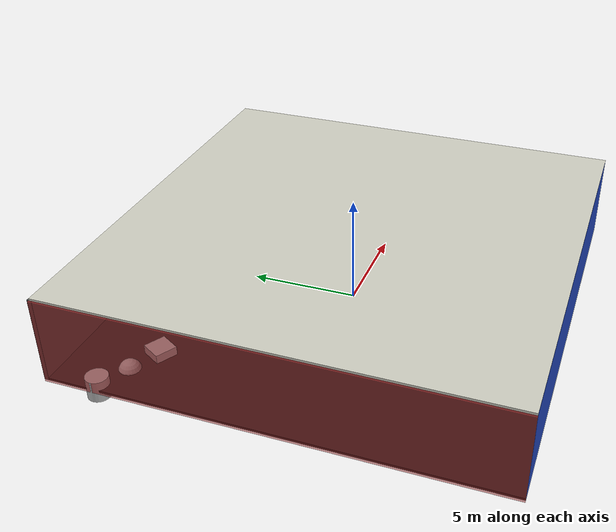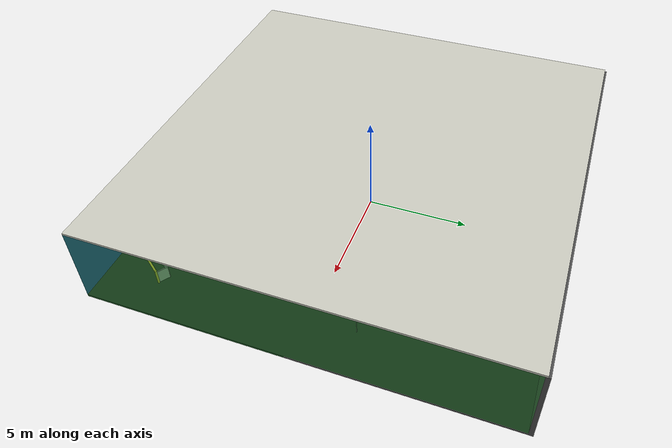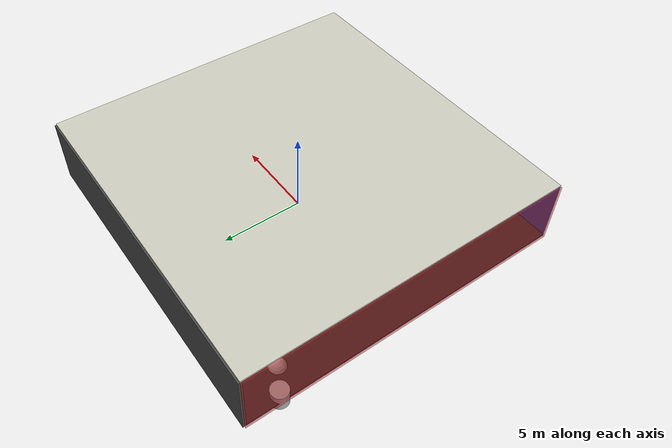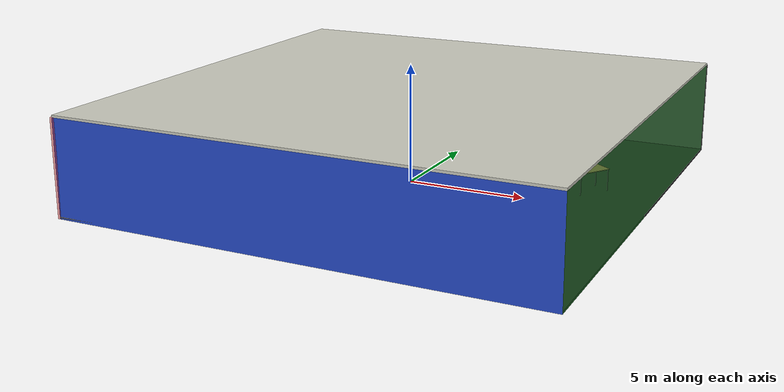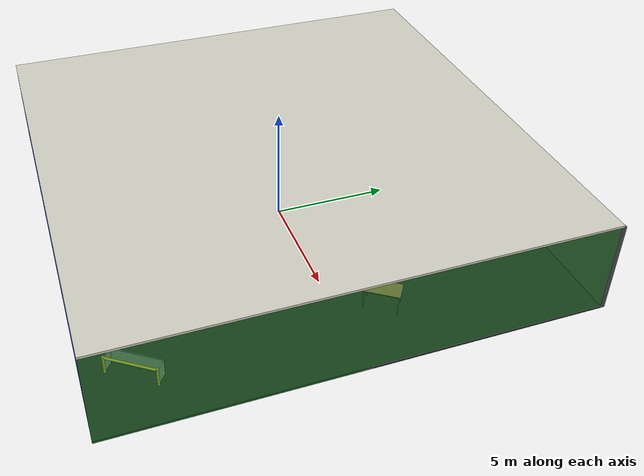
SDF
<sdf version="1.4">
 <world name="default">
  <physics type="ode">
   <max_step_size>0.001</max_step_size>
   <real_time_factor>1</real_time_factor>
   <real_time_update_rate>1000</real_time_update_rate>
   <gravity>0 0 -9.8</gravity>
  </physics>
  <scene><ambient>0.4 0.4 0.4 1</ambient><background>0.7 0.7 0.7 1</background><shadows>1</shadows></scene>
  <model name="Surrounding">
   <static>1</static>
   <link name="Ceiling">
    <collision name="Ceiling_Collision"><geometry><box><size>20 20 0.1</size></box></geometry></collision>
    <visual name="Ceiling_Visual">
     <geometry><box><size>20 20 0.1</size></box></geometry>
     <material>
      <script><uri>file://media/materials/scripts/gazebo.material</uri><name>Gazebo/PaintedWall</name></script>
     </material>
    </visual>
    <pose>0 0 4.05 0 0 0</pose>
   </link>
   <link name="Wall_South">
    <collision name="Wall_South_Collision">
     <geometry><box><size>20 0 4</size></box></geometry>
     <pose>0 0 2 0 -0 0</pose>
    </collision>
    <visual name="Wall_South_Visual">
     <pose>0 0 2 0 -0 0</pose>
     <geometry><box><size>20 0 4</size></box></geometry>
     <material>
      <script><uri>file://media/materials/scripts/gazebo.material</uri><name>Gazebo/BlueLaser</name></script>
     </material>
    </visual>
    <velocity_decay><linear>0</linear><angular>0</angular></velocity_decay>
    <pose>0 -10 0 0 -0 0</pose>
   </link>
   <link name="Wall_East">
    <collision name="Wall_21_Collision">
     <geometry><box><size>20 0 4</size></box></geometry>
     <pose>0 0 2 0 -0 0</pose>
    </collision>
    <visual name="Wall_21_Visual">
     <pose>0 0 2 0 -0 0</pose>
     <geometry><box><size>20 0 4</size></box></geometry>
     <material>
      <script><uri>file://media/materials/scripts/gazebo.material</uri><name>Gazebo/GreenTransparent</name></script>
     </material>
    </visual>
    <velocity_decay><linear>0</linear><angular>0</angular></velocity_decay>
    <pose>10 0 0 0 -0 1.5708</pose>
   </link>
   <link name="Wall_North">
    <collision name="Wall_22_Collision">
     <geometry><box><size>20 0.2 4</size></box></geometry>
     <pose>0 0 2 0 -0 0</pose>
    </collision>
    <visual name="Wall_22_Visual">
     <pose>0 0 2 0 -0 0</pose>
     <geometry><box><size>20 0.2 4</size></box></geometry>
     <material>
      <script><uri>file://media/materials/scripts/gazebo.material</uri><name>Gazebo/DarkGrey</name></script>
     </material>
    </visual>
    <velocity_decay><linear>0</linear><angular>0</angular></velocity_decay>
    <pose>0 10 0 0 -0 0</pose>
   </link>
   <link name="Wall_West">
    <collision name="Wall_23_Collision">
     <geometry><box><size>20 0.2 4</size></box></geometry>
     <pose>0 0 2 0 -0 0</pose>
    </collision>
    <visual name="Wall_23_Visual">
     <pose>0 0 2 0 -0 0</pose>
     <geometry><box><size>20 0.2 4</size></box></geometry>
     <material>
      <script><uri>file://media/materials/scripts/gazebo.material</uri><name>Gazebo/RedTransparent</name></script>
     </material>
    </visual>
    <velocity_decay><linear>0</linear><angular>0</angular></velocity_decay>
    <pose>-10 0 0 0 0 -1.5708</pose>
   </link>
   <link name="Ground_link">
    <collision name="collision">
     <pose>0 0 .05 0 -0 0</pose>
     <geometry><box><size>20 20 0.1</size></box></geometry>
    </collision>
    <visual name="visual">
     <pose>0 0 .05 0 -0 0</pose>
     <geometry><box><size>20 20 0.1</size></box></geometry>
     <material>
      <script><uri>file://media/materials/scripts/gazebo.material</uri><name>Gazebo/FlatBlack</name></script>
     </material>
    </visual>
   </link>
   <static>1</static>
  </model>
  <spherical_coordinates>
   <surface_model>EARTH_WGS84</surface_model>
   <latitude_deg>0</latitude_deg>
   <longitude_deg>0</longitude_deg>
   <elevation>0</elevation>
   <heading_deg>0</heading_deg>
  </spherical_coordinates>
  <light name="lightball_0" type="diffuse">
   <diffuse>0.8 0.8 0.8 1</diffuse>
   <specular>0.2 0.2 0.2 1</specular>
   <attenuation>
    <range>100</range>
    <constant>0.7</constant>
    <linear>0.01</linear>
    <quadratic>0.001</quadratic>
   </attenuation>
   <direction>-0.5 0.1 -0.9</direction>
   <pose>-5.50368890894 0.464077561004 1.65387344631 0 0 0</pose>
  </light>
  <light name="lightball_1" type="diffuse">
   <diffuse>0.8 0.8 0.8 1</diffuse>
   <specular>0.2 0.2 0.2 1</specular>
   <attenuation>
    <range>100</range>
    <constant>0.7</constant>
    <linear>0.01</linear>
    <quadratic>0.001</quadratic>
   </attenuation>
   <direction>-0.5 0.1 -0.9</direction>
   <pose>8.73247971805 -6.50687317878 0.874942361169 0 0 0</pose>
  </light>
  <light name="lightball_2" type="diffuse">
   <diffuse>0.8 0.8 0.8 1</diffuse>
   <specular>0.2 0.2 0.2 1</specular>
   <attenuation>
    <range>100</range>
    <constant>0.7</constant>
    <linear>0.01</linear>
    <quadratic>0.001</quadratic>
   </attenuation>
   <direction>-0.5 0.1 -0.9</direction>
   <pose>-6.48363373664 -9.33044815978 1.84364462039 0 0 0</pose>
  </light>
  <light name="lightball_3" type="diffuse">
   <diffuse>0.8 0.8 0.8 1</diffuse>
   <specular>0.2 0.2 0.2 1</specular>
   <attenuation>
    <range>100</range>
    <constant>0.7</constant>
    <linear>0.01</linear>
    <quadratic>0.001</quadratic>
   </attenuation>
   <direction>-0.5 0.1 -0.9</direction>
   <pose>1.48072928254 -4.15937986466 1.30070522699 0 0 0</pose>
  </light>
  <light name="lightball_4" type="diffuse">
   <diffuse>0.8 0.8 0.8 1</diffuse>
   <specular>0.2 0.2 0.2 1</specular>
   <attenuation>
    <range>100</range>
    <constant>0.7</constant>
    <linear>0.01</linear>
    <quadratic>0.001</quadratic>
   </attenuation>
   <direction>-0.5 0.1 -0.9</direction>
   <pose>-5.31992544366 -8.55007605512 2.55667742608 0 0 0</pose>
  </light>
  <light name="lightball_5" type="diffuse">
   <diffuse>0.8 0.8 0.8 1</diffuse>
   <specular>0.2 0.2 0.2 1</specular>
   <attenuation>
    <range>100</range>
    <constant>0.7</constant>
    <linear>0.01</linear>
    <quadratic>0.001</quadratic>
   </attenuation>
   <direction>-0.5 0.1 -0.9</direction>
   <pose>-1.97367507721 4.58346017506 2.31225580894 0 0 0</pose>
  </light>
  <light name="lightball_6" type="diffuse">
   <diffuse>0.8 0.8 0.8 1</diffuse>
   <specular>0.2 0.2 0.2 1</specular>
   <attenuation>
    <range>100</range>
    <constant>0.7</constant>
    <linear>0.01</linear>
    <quadratic>0.001</quadratic>
   </attenuation>
   <direction>-0.5 0.1 -0.9</direction>
   <pose>3.73607138444 5.50320576402 2.81936297061 0 0 0</pose>
  </light>
  <include>
   <uri>model://textured_shapes</uri>
   <pose>-8.29985539859 7.04390490627 0 0 0 1.05505569699</pose>
  </include>
  <include>
   <uri>model://construction_cone</uri>
   <pose>-4.24777827058 3.78538666797 0 0 0 1.61346027061</pose>
  </include>
  <include>
   <uri>model://robocup_3Dsim_goal</uri>
   <pose>-0.829146965196 5.21745427972 0 0 0 2.49913010204</pose>
  </include>
  <include><uri>model://table</uri><pose>1.6160487709 -1.10302542379 0 0 0 2.45770206626</pose></include>
  <include>
   <uri>model://robocup_3Dsim_goal</uri>
   <pose>7.70715154833 -8.21320743442 0 0 0 2.52582943632</pose>
  </include>
  <include><uri>model://table</uri><pose>7.14883565925 1.79425708809 0 0 0 0.963206958943</pose></include>
 </world>
</sdf>

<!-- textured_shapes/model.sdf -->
<sdf version="1.6">
  <model name="textured_shapes">
    <pose>0 0 0.5 0 0 0</pose>
    <link name="box">
      <pose>0 -1.5 0 0 0 0</pose>
      <collision name="collision">
        <geometry>
          <box>
            <size>1 1 1</size>
          </box>
        </geometry>
      </collision>
      <visual name="visual">
        <geometry>
          <box>
            <size>1 1 1</size>
          </box>
        </geometry>
        <material>
          <script>
            <uri>model://../model_source/models/textured_shapes/materials/scripts</uri>
            <uri>model://../model_source/models/textured_shapes/materials/textures</uri>
            <name>TexturedShape/Squares</name>
          </script>
        </material>
      </visual>
    </link>
    <link name="sphere">
      <collision name="collision">
        <geometry>
          <sphere>
            <radius>0.5</radius>
          </sphere>
        </geometry>
      </collision>
      <visual name="visual">
        <geometry>
          <sphere>
            <radius>0.5</radius>
          </sphere>
        </geometry>
        <material>
          <script>
            <uri>model://../model_source/models/textured_shapes/materials/scripts</uri>
            <uri>model://../model_source/models/textured_shapes/materials/textures</uri>
            <name>TexturedShape/Squares</name>
          </script>
        </material>
      </visual>
    </link>
    <link name="cylinder">
      <pose>0 1.5 0 0 0 0</pose>
      <collision name="collision">
        <geometry>
          <cylinder>
            <radius>0.5</radius>
            <length>1</length>
          </cylinder>
        </geometry>
      </collision>
      <visual name="visual">
        <geometry>
          <cylinder>
            <radius>0.5</radius>
            <length>1</length>
          </cylinder>
        </geometry>
        <material>
          <script>
            <uri>model://../model_source/models/textured_shapes/materials/scripts</uri>
            <uri>model://../model_source/models/textured_shapes/materials/textures</uri>
            <name>TexturedShape/Squares</name>
          </script>
        </material>
      </visual>
    </link>
  </model>
</sdf>

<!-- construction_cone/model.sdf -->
<sdf version="1.5">
  <model name="Construction Cone">
    <link name="link">
      <collision name="collision">
        <geometry>
          <mesh>
            <scale>10 10 10</scale>
            <uri>file://isr-testbed/construction_cone/meshes/construction_cone.dae</uri>
          </mesh>
        </geometry>
      </collision>
      <visual name="visual">
        <geometry>
          <mesh>
            <scale>10 10 10</scale>
            <uri>file://isr-testbed/construction_cone/meshes/construction_cone.dae</uri>
          </mesh>
        </geometry>
      </visual>
    </link>
  </model>
</sdf>

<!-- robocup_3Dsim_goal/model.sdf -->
<sdf version="1.5">
  <model name="robocup_3d_goal">
    <static>true</static>
    <link name="left_post">
      <pose>0 1.05 0.45 0 0 0</pose>
      <collision name="collision">
        <geometry>
          <cylinder>
            <radius>0.05</radius>
            <length>0.9</length>
          </cylinder>
        </geometry>
      </collision>
      <visual name="visual">
        <geometry>
          <cylinder>
            <radius>0.05</radius>
            <length>0.9</length>
          </cylinder>
        </geometry>
        <material>
          <script>
            <uri>file://media/materials/scripts/gazebo.material</uri>
            <name>Gazebo/ZincYellow</name>
          </script>
        </material>
      </visual>
    </link>
    <link name="left_support_horiz_lower">
      <pose>0.30 1.05 0.01 0 0 0</pose>
      <collision name="collision">
        <geometry>
          <box>
            <size>0.50 0.02 0.02</size>
          </box>
        </geometry>
      </collision>
      <visual name="visual">
        <geometry>
          <box>
            <size>0.50 0.02 0.02</size>
          </box>
        </geometry>
        <material>
          <script>
            <uri>file://media/materials/scripts/gazebo.material</uri>
            <name>Gazebo/White</name>
          </script>
        </material>
      </visual>
    </link>
    <link name="left_support_horiz_upper">
      <pose>0.30 1.05 0.79 0 0 0</pose>
      <collision name="collision">
        <geometry>
          <box>
            <size>0.50 0.02 0.02</size>
          </box>
        </geometry>
      </collision>
      <visual name="visual">
        <geometry>
          <box>
            <size>0.50 0.02 0.02</size>
          </box>
        </geometry>
        <material>
          <script>
            <uri>file://media/materials/scripts/gazebo.material</uri>
            <name>Gazebo/White</name>
          </script>
        </material>
      </visual>
    </link>
    <link name="left_support_vertical">
      <pose>0.56 1.05 0.4 0 1.5708 0</pose>
      <collision name="collision">
        <geometry>
          <box>
            <size>0.80 0.02 0.02</size>
          </box>
        </geometry>
      </collision>
      <visual name="visual">
        <geometry>
          <box>
            <size>0.80 0.02 0.02</size>
          </box>
        </geometry>
        <material>
          <script>
            <uri>file://media/materials/scripts/gazebo.material</uri>
            <name>Gazebo/White</name>
          </script>
        </material>
      </visual>
    </link>
    <link name="right_support_horiz_lower">
      <pose>0.30 -1.05 0.01 0 0 0</pose>
      <collision name="collision">
        <geometry>
          <box>
            <size>0.50 0.02 0.02</size>
          </box>
        </geometry>
      </collision>
      <visual name="visual">
        <geometry>
          <box>
            <size>0.50 0.02 0.02</size>
          </box>
        </geometry>
        <material>
          <script>
            <uri>file://media/materials/scripts/gazebo.material</uri>
            <name>Gazebo/White</name>
          </script>
        </material>
      </visual>
    </link>
    <link name="right_support_horiz_upper">
      <pose>0.30 -1.05 0.79 0 0 0</pose>
      <collision name="collision">
        <geometry>
          <box>
            <size>0.50 0.02 0.02</size>
          </box>
        </geometry>
      </collision>
      <visual name="visual">
        <geometry>
          <box>
            <size>0.50 0.02 0.02</size>
          </box>
        </geometry>
        <material>
          <script>
            <uri>file://media/materials/scripts/gazebo.material</uri>
            <name>Gazebo/White</name>
          </script>
        </material>
      </visual>
    </link>
    <link name="right_support_vertical">
      <pose>0.56 -1.05 0.4 0 1.5708 0</pose>
      <collision name="collision">
        <geometry>
          <box>
            <size>0.80 0.02 0.02</size>
          </box>
        </geometry>
      </collision>
      <visual name="visual">
        <geometry>
          <box>
            <size>0.80 0.02 0.02</size>
          </box>
        </geometry>
        <material>
          <script>
            <uri>file://media/materials/scripts/gazebo.material</uri>
            <name>Gazebo/White</name>
          </script>
        </material>
      </visual>
    </link>
    <link name="center_support_horiz_lower">
      <pose>0.56 0 0.01 0 1.5708 0</pose>
      <collision name="collision">
        <geometry>
          <box>
            <size>0.02 2.08 0.02</size>
          </box>
        </geometry>
      </collision>
      <visual name="visual">
        <geometry>
          <box>
            <size>0.02 2.08 0.02</size>
          </box>
        </geometry>
        <material>
          <script>
            <uri>file://media/materials/scripts/gazebo.material</uri>
            <name>Gazebo/White</name>
          </script>
        </material>
      </visual>
    </link>
    <link name="center_support_horiz_upper">
      <pose>0.56 0 0.79 0 1.5708 0</pose>
      <collision name="collision">
        <geometry>
          <box>
            <size>0.02 2.08 0.02</size>
          </box>
        </geometry>
      </collision>
      <visual name="visual">
        <geometry>
          <box>
            <size>0.02 2.08 0.02</size>
          </box>
        </geometry>
        <material>
          <script>
            <uri>file://media/materials/scripts/gazebo.material</uri>
            <name>Gazebo/White</name>
          </script>
        </material>
      </visual>
    </link>
    <link name="right_post">
      <pose>0 -1.05 0.45 0 0 0</pose>
      <collision name="collision">
        <geometry>
          <cylinder>
            <radius>0.05</radius>
            <length>0.9</length>
          </cylinder>
        </geometry>
      </collision>
      <visual name="visual">
        <geometry>
          <cylinder>
            <radius>0.05</radius>
            <length>0.9</length>
          </cylinder>
        </geometry>
        <material>
          <script>
            <uri>file://media/materials/scripts/gazebo.material</uri>
            <name>Gazebo/ZincYellow</name>
          </script>
        </material>
      </visual>
    </link>
    <link name="crossbar">
      <pose>0 0 0.85 1.57 1.57 0</pose>
      <collision name="collision">
        <geometry>
          <cylinder>
            <radius>0.05</radius>
            <length>2.0</length>
          </cylinder>
        </geometry>
      </collision>
      <visual name="visual">
        <geometry>
          <cylinder>
            <radius>0.05</radius>
            <length>2.0</length>
          </cylinder>
        </geometry>
        <material>
          <script>
            <uri>file://media/materials/scripts/gazebo.material</uri>
            <name>Gazebo/ZincYellow</name>
          </script>
        </material>
      </visual>
    </link>
    <link name="center_net">
      <pose>0.56 0 0.40 0 0 0</pose>
      <collision name="collision">
        <geometry>
          <box>
            <size>0.01 2.1 0.80</size>
          </box>
        </geometry>
      </collision>
      <visual name="visual">
        <geometry>
          <box>
            <size>0.01 2.1 0.80</size>
          </box>
        </geometry>
        <material>
          <script>
            <uri>model://../model_source/models/robocup09_spl_field/materials/scripts/</uri>
            <uri>model://../model_source/models/robocup09_spl_field/materials/textures/</uri>
            <name>RoboCup/Net</name>
          </script>
        </material>
      </visual>
    </link>
    <link name="left_net">
      <pose>0.30 1.05 0.40 0 0 0</pose>
      <collision name="collision">
        <geometry>
          <box>
            <size>0.50 0.01 0.76</size>
          </box>
        </geometry>
      </collision>
      <visual name="visual">
        <geometry>
          <box>
            <size>0.50 0.01 0.76</size>
          </box>
        </geometry>
        <material>
          <script>
            <uri>model://../model_source/models/robocup09_spl_field/materials/scripts/</uri>
            <uri>model://../model_source/models/robocup09_spl_field/materials/textures/</uri>
            <name>RoboCup/Net</name>
          </script>
        </material>
      </visual>
    </link>
    <link name="right_net">
      <pose>0.30 -1.05 0.40 0 0 0</pose>
      <collision name="collision">
        <geometry>
          <box>
            <size>0.50 0.01 0.76</size>
          </box>
        </geometry>
      </collision>
      <visual name="visual">
        <geometry>
          <box>
            <size>0.50 0.01 0.76</size>
          </box>
        </geometry>
        <material>
          <script>
            <uri>model://../model_source/models/robocup09_spl_field/materials/scripts/</uri>
            <uri>model://../model_source/models/robocup09_spl_field/materials/textures/</uri>
            <name>RoboCup/Net</name>
          </script>
        </material>
      </visual>
    </link>
  </model>
</sdf>

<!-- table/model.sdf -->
<sdf version="1.5">
  <model name="table">
    <static>true</static>
    <link name="link">
      <collision name="surface">
        <pose>0 0 1.0 0 0 0</pose>
        <geometry>
          <box>
            <size>1.5 0.8 0.03</size>
          </box>
        </geometry>
        <surface>
          <friction>
            <ode>
              <mu>0.6</mu>
              <mu2>0.6</mu2>
            </ode>
          </friction>
        </surface>
      </collision>
      <visual name="visual1">
        <pose>0 0 1.0 0 0 0</pose>
        <geometry>
          <box>
            <size>1.5 0.8 0.03</size>
          </box>
        </geometry>
        <material>
          <script>
            <uri>model://media/materials/scripts/gazebo.material</uri>
            <name>Gazebo/Wood</name>
          </script>
        </material>
      </visual>
      <collision name="front_left_leg">
        <pose>0.68 0.38 0.5 0 0 0</pose>
        <geometry>
          <cylinder>
            <radius>0.02</radius>
            <length>1.0</length>
          </cylinder>
        </geometry>
      </collision>
      <visual name="front_left_leg">
        <pose>0.68 0.38 0.5 0 0 0</pose>
        <geometry>
          <cylinder>
            <radius>0.02</radius>
            <length>1.0</length>
          </cylinder>
        </geometry>
        <material>
          <script>
            <uri>model://media/materials/scripts/gazebo.material</uri>
            <name>Gazebo/Grey</name>
          </script>
        </material>
      </visual>
      <collision name="front_right_leg">
        <pose>0.68 -0.38 0.5 0 0 0</pose>
        <geometry>
          <cylinder>
            <radius>0.02</radius>
            <length>1.0</length>
          </cylinder>
        </geometry>
      </collision>
      <visual name="front_right_leg">
        <pose>0.68 -0.38 0.5 0 0 0</pose>
        <geometry>
          <cylinder>
            <radius>0.02</radius>
            <length>1.0</length>
          </cylinder>
        </geometry>
        <material>
          <script>
            <uri>model://media/materials/scripts/gazebo.material</uri>
            <name>Gazebo/Grey</name>
          </script>
        </material>
      </visual>
      <collision name="back_right_leg">
        <pose>-0.68 -0.38 0.5 0 0 0</pose>
        <geometry>
          <cylinder>
            <radius>0.02</radius>
            <length>1.0</length>
          </cylinder>
        </geometry>
      </collision>
      <visual name="back_right_leg">
        <pose>-0.68 -0.38 0.5 0 0 0</pose>
        <geometry>
          <cylinder>
            <radius>0.02</radius>
            <length>1.0</length>
          </cylinder>
        </geometry>
        <material>
          <script>
            <uri>model://media/materials/scripts/gazebo.material</uri>
            <name>Gazebo/Grey</name>
          </script>
        </material>
      </visual>
      <collision name="back_left_leg">
        <pose>-0.68 0.38 0.5 0 0 0</pose>
        <geometry>
          <cylinder>
            <radius>0.02</radius>
            <length>1.0</length>
          </cylinder>
        </geometry>
      </collision>
      <visual name="back_left_leg">
        <pose>-0.68 0.38 0.5 0 0 0</pose>
        <geometry>
          <cylinder>
            <radius>0.02</radius>
            <length>1.0</length>
          </cylinder>
        </geometry>
        <material>
          <script>
            <uri>model://media/materials/scripts/gazebo.material</uri>
            <name>Gazebo/Grey</name>
          </script>
        </material>
      </visual>
    </link>
  </model>
</sdf>
